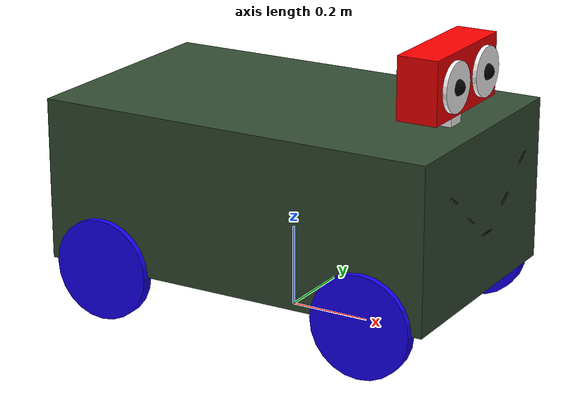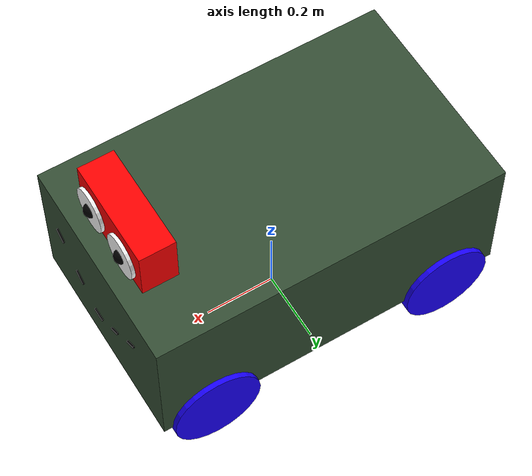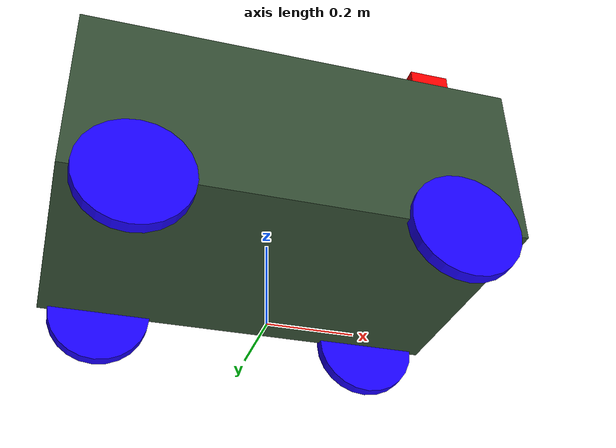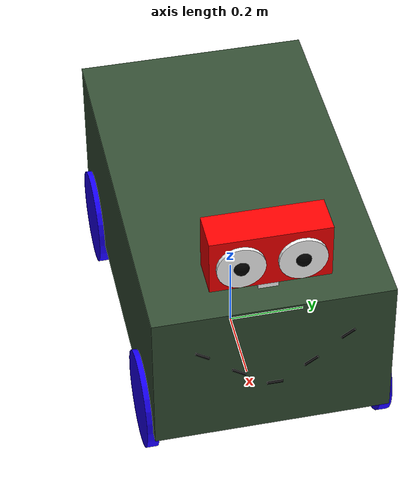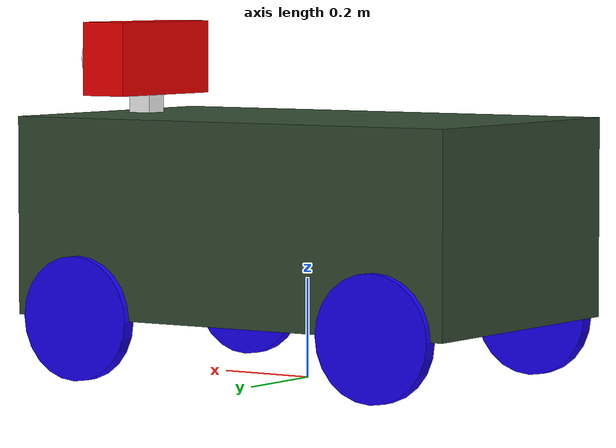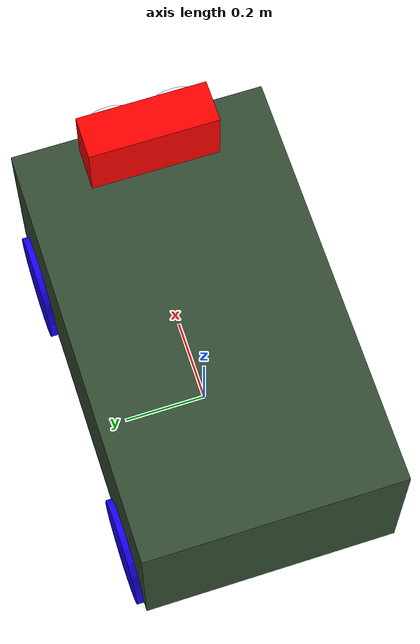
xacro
<?xml version="1.0"?>
<robot xmlns:xacro="http://ros.org/wiki/xacro" name="simple_box_bot">
  <!-- Add ROS 2 Control Import -->

  <!-- ========== PROPERTIES ========== -->
  <!-- Dimension of the body -->
  <xacro:property name="body_x" value="1" />
  <xacro:property name="body_y" value="0.6" />
  <xacro:property name="body_z" value="0.4" />

  <!-- Dimension of the Wheel -->
  <xacro:property name="wheel_len" value="0.03" />
  <xacro:property name="wheel_radius" value="0.125" />
  <xacro:property name="wheel_z" value="${wheel_radius}" />

  <!-- Dimension of the Standing Rod -->
  <xacro:property name="rod_x" value="0.05" />
  <xacro:property name="rod_y" value="0.05" />
  <xacro:property name="rod_z" value="0.3" />

  <!-- Dimension of the Lidar Body -->
  <xacro:property name="lidar_x" value="0.1" />
  <xacro:property name="lidar_y" value="0.3" />
  <xacro:property name="lidar_z" value="0.15" />

  <!-- PI constant -->
  <xacro:property name="PI" value="3.141592" />

  <!-- Material Color -->
  <material name="red">
    <color rgba="1 0 0 1" />
  </material>

  <material name="black">
    <color rgba="0 0 0 1" />
  </material>

  <material name="white">
    <color rgba="1 1 1 1" />
  </material>

  <material name="almost_blue">
    <color rgba="0.1 0 1 1" />
  </material>

  <material name="almost_green">
    <color rgba="0.2 0.3 0.2 1" />
  </material>

  <!-- Material Density of the parts -->
  <xacro:property name="body_density" value="2710.0" />
  <xacro:property name="wheel_density" value="2710.0" />
  <xacro:property name="sensor_density" value="2710" />
  <xacro:property name="rod_density" value="2710.0" />

  <!-- Material mass of the parts -->
  <xacro:property name="body_mass" value="${body_density*body_x*body_y*body_z}" />
  <xacro:property name="wheel_mass" value="${wheel_density*(PI*wheel_radius*wheel_radius*wheel_len)}" />
  <xacro:property name="sensor_mass" value="${sensor_density*lidar_x*lidar_y*lidar_z}" />
  <xacro:property name="rod_mass" value="${rod_density * rod_x * rod_y * rod_z}" />

  <!-- Moment of inertia of the wheels -->
  <xacro:property name="Iz_wheel" value="${0.5*wheel_mass*wheel_radius*wheel_radius}" />
  <xacro:property name="I_wheel" value="${(1.0/12.0)*wheel_mass*(3*wheel_radius*wheel_radius+wheel_len*wheel_len)}" />

  <xacro:macro name="inertia_wheel">
    <inertial>
      <origin rpy="0 0 0" xyz="0 0 0"/>
      <mass value="${wheel_mass}"/>
      <inertia ixx="${I_wheel}" ixy="0.0" ixz="0.0" iyy="${I_wheel}" iyz="0" izz="${Iz_wheel}"/>
    </inertial>
  </xacro:macro>

<!-- Keep your existing base_link and other elements -->

  <!-- ========== MAIN BODY ========== -->
  <link name="base_link">
    <visual>
      <geometry>
        <box size="${body_x} ${body_y} ${body_z}" />
      </geometry>
      <material name="almost_green" />
      <origin xyz="0 0 ${body_z / 2 + wheel_radius }" rpy="0 0 0" />
    </visual>

    <visual name="smile_segment1">
        <geometry>
            <box size="0.04 0.005 0.005"/>
        </geometry>
        <material name="black"/>
        <origin xyz="${body_x/2 + 0.01} -0.18 ${body_z/2 + wheel_radius/2 + 0.15}" rpy="0 0.6 ${PI/2}"/>
    </visual>

    <visual name="smile_segment2">
        <geometry>
            <box size="0.04 0.005 0.005"/>
        </geometry>
        <material name="black"/>
        <origin xyz="${body_x/2 + 0.01} -0.09 ${body_z/2 + wheel_radius/2 + 0.075}" rpy="0 0.6 ${PI/2}"/>
    </visual>

    <visual name="smile_segment3">
        <geometry>
            <box size="0.04 0.005 0.005"/>
        </geometry>
        <material name="black"/>
        <origin xyz="${body_x/2 + 0.01} 0 ${body_z/2 + wheel_radius/2 + 0.02}" rpy="0 0 ${PI/2}"/>
    </visual>

    <visual name="smile_segment4">
        <geometry>
            <box size="0.04 0.005 0.005"/>
        </geometry>
        <material name="black"/>
        <origin xyz="${body_x/2 + 0.01} 0.09 ${body_z/2 + wheel_radius/2 + 0.075}" rpy="0 -0.6 ${PI/2}"/>
    </visual>

    <visual name="smile_segment5">
        <geometry>
            <box size="0.04 0.005 0.005"/>
        </geometry>
        <material name="black"/>
        <origin xyz="${body_x/2 + 0.01} 0.18 ${body_z/2 + wheel_radius/2 + 0.15}" rpy="0 -0.6 ${PI/2}"/>
    </visual>

    <collision>
      <geometry>
        <box size="${body_x} ${body_y} ${body_z}" />
      </geometry>
      <origin xyz="0 0 ${body_z / 2 + wheel_radius }" rpy="0 0 0" />
    </collision>

    <inertial>
      <origin rpy="0 0 0" xyz="0 0 0"/>
      <mass value="${body_mass}"/>
      <inertia
        ixx="${(1/12)*body_mass*(body_y*body_y + body_z*body_z)}"
        ixy="0"
        ixz="0"
        iyy="${(1/12)*body_mass*(body_x*body_x+body_z*body_z)}"
        iyz="0"
        izz="${(1/12)*body_mass*(body_y*body_y+body_x*body_x)}"
      />
    </inertial>
  </link>

  <!-- ========== WHEELS ========== -->
  <!-- Right Front wheel -->
  <link name="rf_wheel">
    <visual>
      <geometry>
        <cylinder length="${wheel_len}" radius="${wheel_radius}" />
      </geometry>
      <material name="almost_blue" />
      <origin xyz="0 0 0" rpy="${PI/2} 0 0" />
    </visual>

    <collision>
      <geometry>
        <cylinder length="${wheel_len}" radius="${wheel_radius}" />
      </geometry>
      <origin xyz="0 0 0" rpy="${PI/2} 0 0" />
    </collision>

    <xacro:inertia_wheel />
  </link>

  <joint name="body_to_rf_wheel" type="continuous">
    <parent link="base_link" />
    <child link="rf_wheel" />
    <origin xyz="${body_x/2 - 1.2*wheel_radius} ${-body_y/2} ${wheel_z}" rpy="0 0 0" />
    <axis xyz="0 1 0" />
  </joint>

  <!-- Right Back Wheel -->
  <link name="rb_wheel">
    <visual>
      <geometry>
        <cylinder length="${wheel_len}" radius="${wheel_radius}" />
      </geometry>
      <material name="almost_blue" />
      <origin xyz="0 0 0" rpy="${PI/2} 0 0" />
    </visual>

    <collision>
      <geometry>
        <cylinder length="${wheel_len}" radius="${wheel_radius}" />
      </geometry>
      <origin xyz="0 0 0" rpy="${PI/2} 0 0" />
    </collision>

    <xacro:inertia_wheel />
  </link>

  <joint name="body_to_rb_wheel" type="continuous">
    <parent link="base_link" />
    <child link="rb_wheel" />
    <origin xyz="${-body_x/2 + 1.2*wheel_radius} ${-body_y/2} ${wheel_z}" rpy="0 0 0" />
    <axis xyz="0 1 0" />
  </joint>

  <!-- Left Front Wheel -->
  <link name="lf_wheel">
    <visual>
      <geometry>
        <cylinder length="${wheel_len}" radius="${wheel_radius}" />
      </geometry>
      <material name="almost_blue" />
      <origin xyz="0 0 0" rpy="${PI/2} 0 0" />
    </visual>

    <collision>
      <geometry>
        <cylinder length="${wheel_len}" radius="${wheel_radius}" />
      </geometry>
      <origin xyz="0 0 0" rpy="${PI/2} 0 0" />
    </collision>

    <xacro:inertia_wheel />
  </link>

  <joint name="body_to_lf_wheel" type="continuous">
    <parent link="base_link" />
    <child link="lf_wheel" />
    <origin xyz="${body_x/2 - 1.2*wheel_radius} ${body_y/2} ${wheel_z}" rpy="0 0 0" />
    <axis xyz="0 1 0" />
  </joint>

  <!-- Left Back Wheel -->
  <link name="lb_wheel">
    <visual>
      <geometry>
        <cylinder length="${wheel_len}" radius="${wheel_radius}" />
      </geometry>
      <material name="almost_blue" />
      <origin xyz="0 0 0" rpy="${PI/2} 0 0" />
    </visual>

    <collision>
      <geometry>
        <cylinder length="${wheel_len}" radius="${wheel_radius}" />
      </geometry>
      <origin xyz="0 0 0" rpy="${PI/2} 0 0" />
    </collision>

    <xacro:inertia_wheel />
  </link>

  <joint name="body_to_lb_wheel" type="continuous">
    <parent link="base_link" />
    <child link="lb_wheel" />
    <origin xyz="${-body_x/2 + 1.2*wheel_radius} ${body_y/2} ${wheel_z}" rpy="0 0 0" />
    <axis xyz="0 1 0" />
  </joint>

  <!-- ========== LIDAR STRUCTURE ========== -->
  <!-- Standing pole Structure and Joint -->
  <link name="rod">
    <visual>
      <geometry>
        <box size="${rod_x} ${rod_y} ${rod_z}" />
      </geometry>
      <material name="white" />
    </visual>

    <collision>
      <geometry>
        <box size="${rod_x} ${rod_y} ${rod_z}" />
      </geometry>
    </collision>

    <inertial>
      <origin xyz="0 0 0" rpy="0 0 0" />
      <mass value="${rod_mass}" />
      <inertia
        ixx="${(1/12.0) * rod_mass * (rod_y*rod_y + rod_z*rod_z)}"
        ixy="0.0"
        ixz="0.0"
        iyy="${(1/12.0) * rod_mass * (rod_x*rod_x + rod_z*rod_z)}"
        iyz="0.0"
        izz="${(1/12.0) * rod_mass * (rod_x*rod_x + rod_y*rod_y)}"
      />
    </inertial>
  </link>

  <joint name="body_to_rod" type="fixed">
    <parent link="base_link" />
    <child link="rod" />
    <origin xyz="${body_x/2 - lidar_x} 0 ${body_z + wheel_radius}" rpy="0 0 0" />
  </joint>

  <!-- Lidar Main Body -->
  <link name="lidar_body">
    <visual name="main_body">
      <geometry>
        <box size="${lidar_x} ${lidar_y} ${lidar_z}" />
      </geometry>
      <material name="red" />
    </visual>

    <visual name="left_circle">
        <geometry>
            <cylinder length="0.01" radius="${lidar_z/2.5}"/>
        </geometry>
        <material name="white" />
        <origin xyz="${lidar_x/2 + 0.01} ${lidar_y/4} 0" rpy="0 ${PI/2} 0"/>
    </visual>

    <visual name="right_circle">
        <geometry>
            <cylinder length="0.01" radius="${lidar_z/2.5}"/>
        </geometry>
        <material name="white" />
        <origin xyz="${lidar_x/2 + 0.01} ${-lidar_y/4} 0" rpy="0 ${PI/2} 0"/>
    </visual>

    <visual name="left_eye">
        <geometry>
            <sphere radius="0.02"/>
        </geometry>
        <material name="black" />
        <origin xyz="${lidar_x/2 + 0.01} ${lidar_y/4} 0" rpy="0 0 0"/>
    </visual>

    <visual name="right_eye">
        <geometry>
            <sphere radius="0.02"/>
        </geometry>
        <material name="black" />
        <origin xyz="${lidar_x/2 + 0.01} ${-lidar_y/4} 0" rpy="0 0 0"/>
    </visual>

    <collision>
      <geometry>
        <box size="${lidar_x} ${lidar_y} ${lidar_z}" />
      </geometry>
    </collision>

    <inertial>
      <origin rpy="0 0 0" xyz="0 0 0"/>
      <mass value="${sensor_mass}"/>
      <inertia
        ixx="${(1/12)*sensor_mass*(lidar_y*lidar_y + lidar_z*lidar_z)}"
        ixy="0"
        ixz="0"
        iyy="${(1/12)*sensor_mass*(lidar_x*lidar_x + lidar_z*lidar_z)}"
        iyz="0"
        izz="${(1/12)*sensor_mass*(lidar_x*lidar_x + lidar_y*lidar_y)}"
      />
    </inertial>
  </link>

  <joint name="rod_to_lidar" type="fixed">
    <parent link="rod" />
    <child link="lidar_body" />
    <origin xyz="0 0 ${rod_z/2 - lidar_z/4}" rpy="0 0 0" />
  </joint>

  <!-- Camera sensor -->
  <link name="camera_link">
    <visual>
      <geometry>
        <box size="0.05 0.05 0.05" />
      </geometry>
      <material name="black" />
    </visual>
    <collision>
      <geometry>
        <box size="0.05 0.05 0.05" />
      </geometry>
    </collision>
    <inertial>
      <mass value="0.01" />
      <inertia ixx="1e-6" ixy="0" ixz="0" iyy="1e-6" iyz="0" izz="1e-6" />
    </inertial>
  </link>

  <joint name="camera_joint" type="fixed">
    <parent link="lidar_body" />
    <child link="camera_link" />
    <origin xyz="0 0 0" rpy="0 0 0" />
  </joint>

  <!-- Include Gazebo extensions -->
  <xacro:include filename="robot.gazebo.xacro" />

  <!-- Joint State Plugin -->
  <xacro:joint_state_plugin/>

  <!-- Differential Drive Plugin -->
  <xacro:diff_drive_plugin
      left1="body_to_lf_wheel"
      left2="body_to_lb_wheel"
      right1="body_to_rf_wheel"
      right2="body_to_rb_wheel"
      wheel_sep="${body_y}"
      wheel_rad="${wheel_radius}" />

</robot>
